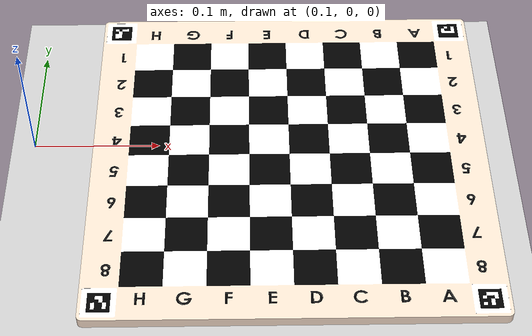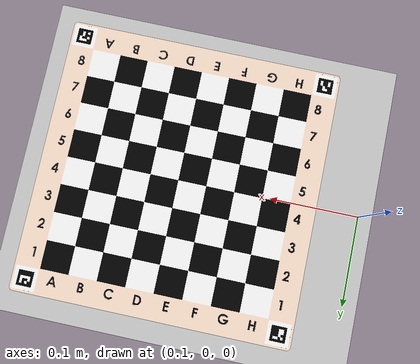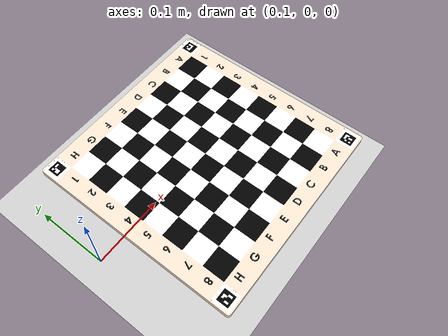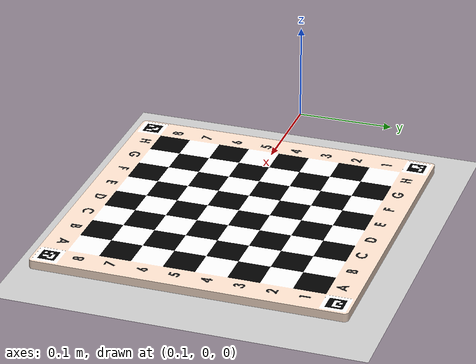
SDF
<sdf version="1.7">
 <world name="default">
  <light name="sun" type="directional">
   <pose>0 0 10 0 -0 0</pose>
   <diffuse>0.8 0.8 0.8 1</diffuse>
   <specular>0.2 0.2 0.2 1</specular>
   <attenuation>
    <range>1000</range>
    <constant>0.9</constant>
    <linear>0.01</linear>
    <quadratic>0.001</quadratic>
   </attenuation>
   <direction>-0.5 0.1 -0.9</direction>
   <spot><inner_angle>0</inner_angle><outer_angle>0</outer_angle><falloff>0</falloff></spot>
  </light>
  <model name="ground_plane">
   <static>1</static>
   <link name="link">
    <collision name="collision">
     <geometry><plane><normal>0 0 1</normal><size>100 100</size></plane></geometry>
     <surface><friction><ode><mu>100</mu><mu2>50</mu2></ode></friction></surface>
    </collision>
    <visual name="visual">
     <cast_shadows>0</cast_shadows>
     <geometry><plane><normal>0 0 1</normal><size>100 100</size></plane></geometry>
     <material>
      <script><uri>file://media/materials/scripts/gazebo.material</uri><name>Gazebo/Grey</name></script>
     </material>
    </visual>
   </link>
   <pose>0 0 -0.0405 0 -0 0</pose>
  </model>
  <model name="chessboard">
   <static>1</static>
   <link name="link">
    <inertial>
     <mass>0.05</mass>
     <inertia><ixx>1.5e-05</ixx><ixy>0</ixy><ixz>0</ixz><iyy>1.5e-05</iyy><iyz>0</iyz><izz>1.08e-05</izz></inertia>
    </inertial>
    <collision name="colision">
     <geometry><box><size>0.401995 0.401995 0.0349561</size></box></geometry>
     <surface>
      <friction><ode><mu>30</mu><mu2>30</mu2><fdir1>0 0 0</fdir1></ode></friction>
      <contact><ode><kp>1e+06</kp><kd>100</kd><min_depth>0.0025</min_depth><max_vel>1</max_vel></ode></contact>
     </surface>
    </collision>
    <visual name="visual1">
     <geometry>
      <mesh><uri>model://chessboard/meshes/chessboard.dae</uri><scale>0.873902 0.873902 0.873902</scale></mesh>
     </geometry>
    </visual>
    <velocity_decay><linear>0</linear><angular>0</angular></velocity_decay>
   </link>
   <pose>0.305523 -0 -0.02 0 -0 1.5708</pose>
  </model>
  <gravity>0 0 -9.8</gravity>
  <magnetic_field>6e-06 2.3e-05 -4.2e-05</magnetic_field>
  <atmosphere type="adiabatic"/>
  <physics type="ode">
   <max_step_size>0.001</max_step_size>
   <real_time_factor>1</real_time_factor>
   <real_time_update_rate>1000</real_time_update_rate>
  </physics>
  <scene><ambient>0.4 0.4 0.4 1</ambient><background>0.7 0.7 0.7 1</background><shadows>1</shadows></scene>
  <audio><device>default</device></audio>
  <spherical_coordinates>
   <surface_model>EARTH_WGS84</surface_model>
   <latitude_deg>0</latitude_deg>
   <longitude_deg>0</longitude_deg>
   <elevation>0</elevation>
   <heading_deg>0</heading_deg>
  </spherical_coordinates>
 </world>
</sdf>
